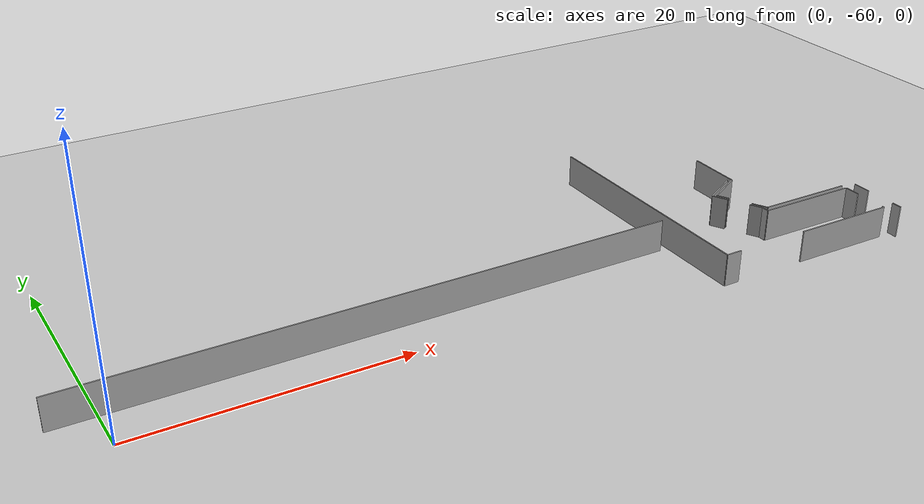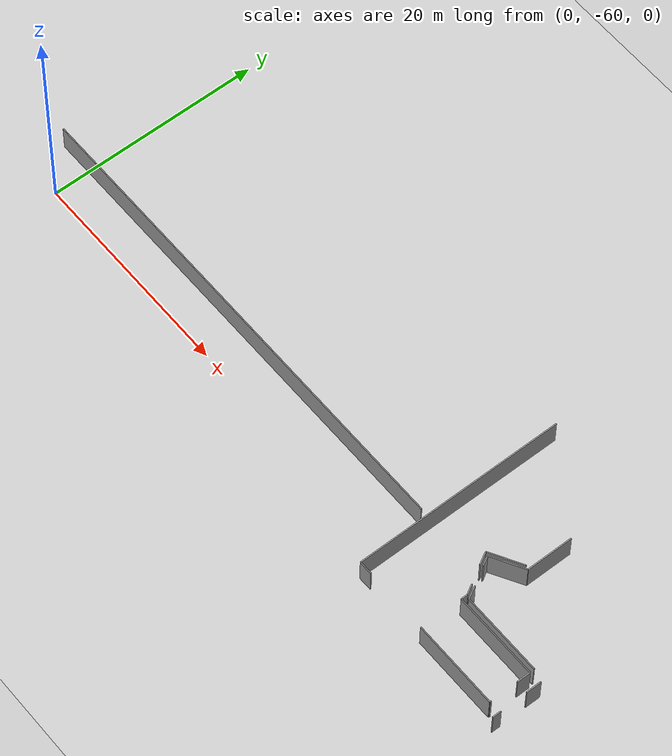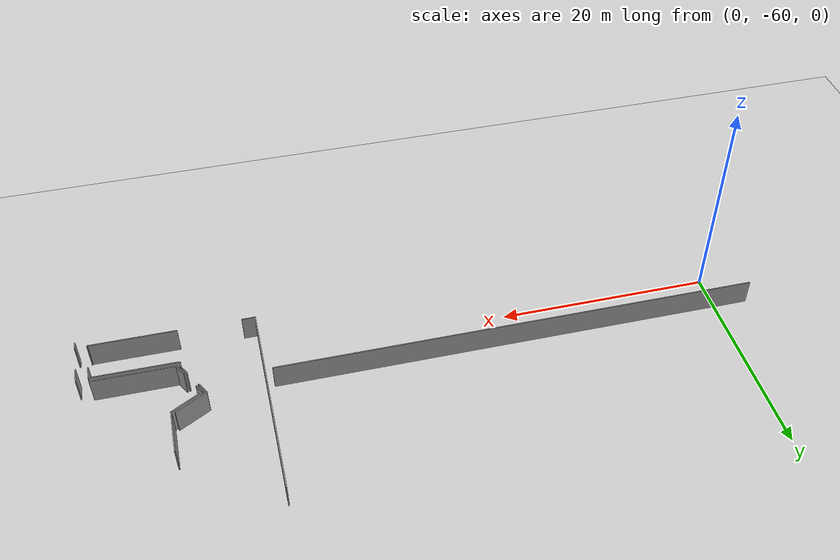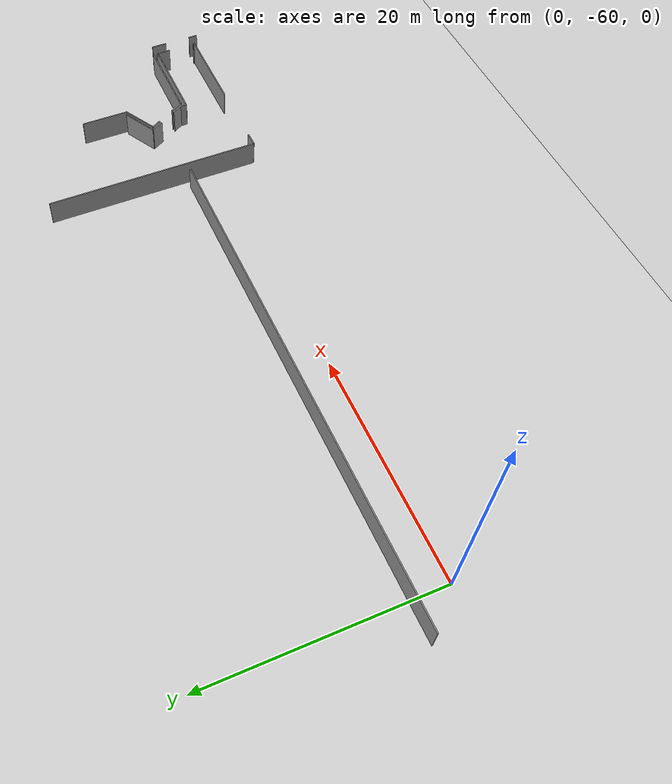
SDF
<sdf version="1.6">
 <world name="default">
  <model name="ground_plane">
   <static>1</static>
   <link name="link">
    <collision name="collision">
     <geometry><plane><normal>0 0 1</normal><size>100 100</size></plane></geometry>
     <surface><friction><ode><mu>100</mu><mu2>50</mu2></ode></friction></surface>
    </collision>
    <visual name="visual">
     <cast_shadows>0</cast_shadows>
     <geometry><plane><normal>0 0 1</normal><size>100 100</size></plane></geometry>
     <material>
      <script><uri>file://media/materials/scripts/gazebo.material</uri><name>Gazebo/Grey</name></script>
     </material>
    </visual>
   </link>
  </model>
  <model name="0510035517_A_40_1_105">
   <static>1</static>
   <link name="Wall_626">
    <collision name="Wall_626_Collision">
     <geometry><box><size>45.6844857498 0.1 2.5</size></box></geometry>
     <pose>22.8422428749 0 1.25 0 0 0</pose>
    </collision>
    <visual name="Wall_626_Visual">
     <pose>22.8422428749 0 1.25 0 0 0</pose>
     <geometry><box><size>45.6844857498 0.1 2.5</size></box></geometry>
     <material>
      <script><uri>file://media/materials/scripts/gazebo.material</uri><name>Gazebo/Grey</name></script>
      <ambient>1 1 1 1</ambient>
     </material>
    </visual>
    <pose>137.002344599 -120.377169072 0 0 0 -3.14096399927</pose>
   </link>
   <link name="Wall_627">
    <collision name="Wall_627_Collision">
     <geometry><box><size>19.5769555797 0.1 2.5</size></box></geometry>
     <pose>9.78847778985 0 1.25 0 0 0</pose>
    </collision>
    <visual name="Wall_627_Visual">
     <pose>9.78847778985 0 1.25 0 0 0</pose>
     <geometry><box><size>19.5769555797 0.1 2.5</size></box></geometry>
     <material>
      <script><uri>file://media/materials/scripts/gazebo.material</uri><name>Gazebo/Grey</name></script>
      <ambient>1 1 1 1</ambient>
     </material>
    </visual>
    <pose>137.69034775 -126.947128978 0 0 0 1.57079632679</pose>
   </link>
   <link name="Wall_632">
    <collision name="Wall_632_Collision">
     <geometry><box><size>3.27915813742 0.1 2.5</size></box></geometry>
     <pose>1.63957906871 0 1.25 0 0 0</pose>
    </collision>
    <visual name="Wall_632_Visual">
     <pose>1.63957906871 0 1.25 0 0 0</pose>
     <geometry><box><size>3.27915813742 0.1 2.5</size></box></geometry>
     <material>
      <script><uri>file://media/materials/scripts/gazebo.material</uri><name>Gazebo/Grey</name></script>
      <ambient>1 1 1 1</ambient>
     </material>
    </visual>
    <pose>145.770508886 -117.332367537 0 0 0 -2.62273494541</pose>
   </link>
   <link name="Wall_633">
    <collision name="Wall_633_Collision">
     <geometry><box><size>1.22577924702 0.1 2.5</size></box></geometry>
     <pose>0.612889623511 0 1.25 0 0 0</pose>
    </collision>
    <visual name="Wall_633_Visual">
     <pose>0.612889623511 0 1.25 0 0 0</pose>
     <geometry><box><size>1.22577924702 0.1 2.5</size></box></geometry>
     <material>
      <script><uri>file://media/materials/scripts/gazebo.material</uri><name>Gazebo/Grey</name></script>
      <ambient>1 1 1 1</ambient>
     </material>
    </visual>
    <pose>142.922933227 -118.958464383 0 0 0 -1.06327490429</pose>
   </link>
   <link name="Wall_634">
    <collision name="Wall_634_Collision">
     <geometry><box><size>1.00200835243 0.1 2.5</size></box></geometry>
     <pose>0.501004176213 0 1.25 0 0 0</pose>
    </collision>
    <visual name="Wall_634_Visual">
     <pose>0.501004176213 0 1.25 0 0 0</pose>
     <geometry><box><size>1.00200835243 0.1 2.5</size></box></geometry>
     <material>
      <script><uri>file://media/materials/scripts/gazebo.material</uri><name>Gazebo/Grey</name></script>
      <ambient>1 1 1 1</ambient>
     </material>
    </visual>
    <pose>144.396281682 -121.558745227 0 0 0 -1.05574016929</pose>
   </link>
   <link name="Wall_635">
    <collision name="Wall_635_Collision">
     <geometry><box><size>0.589390213683 0.1 2.5</size></box></geometry>
     <pose>0.294695106841 0 1.25 0 0 0</pose>
    </collision>
    <visual name="Wall_635_Visual">
     <pose>0.294695106841 0 1.25 0 0 0</pose>
     <geometry><box><size>0.589390213683 0.1 2.5</size></box></geometry>
     <material>
      <script><uri>file://media/materials/scripts/gazebo.material</uri><name>Gazebo/Grey</name></script>
      <ambient>1 1 1 1</ambient>
     </material>
    </visual>
    <pose>144.889854686 -122.430758087 0 0 0 -1.57079632679</pose>
   </link>
   <link name="Wall_636">
    <collision name="Wall_636_Collision">
     <geometry><box><size>7.96045316203 0.1 2.5</size></box></geometry>
     <pose>3.98022658102 0 1.25 0 0 0</pose>
    </collision>
    <visual name="Wall_636_Visual">
     <pose>3.98022658102 0 1.25 0 0 0</pose>
     <geometry><box><size>7.96045316203 0.1 2.5</size></box></geometry>
     <material>
      <script><uri>file://media/materials/scripts/gazebo.material</uri><name>Gazebo/Grey</name></script>
      <ambient>1 1 1 1</ambient>
     </material>
    </visual>
    <pose>144.889854686 -123.020148301 0 0 0 0.0</pose>
   </link>
   <link name="Wall_637">
    <collision name="Wall_637_Collision">
     <geometry><box><size>1.24231969145 0.1 2.5</size></box></geometry>
     <pose>0.621159845727 0 1.25 0 0 0</pose>
    </collision>
    <visual name="Wall_637_Visual">
     <pose>0.621159845727 0 1.25 0 0 0</pose>
     <geometry><box><size>1.24231969145 0.1 2.5</size></box></geometry>
     <material>
      <script><uri>file://media/materials/scripts/gazebo.material</uri><name>Gazebo/Grey</name></script>
      <ambient>1 1 1 1</ambient>
     </material>
    </visual>
    <pose>152.850307848 -123.020148301 0 0 0 -1.57079632679</pose>
   </link>
   <link name="Wall_638">
    <collision name="Wall_638_Collision">
     <geometry><box><size>0.141311323332 0.1 2.5</size></box></geometry>
     <pose>0.0706556616661 0 1.25 0 0 0</pose>
    </collision>
    <visual name="Wall_638_Visual">
     <pose>0.0706556616661 0 1.25 0 0 0</pose>
     <geometry><box><size>0.141311323332 0.1 2.5</size></box></geometry>
     <material>
      <script><uri>file://media/materials/scripts/gazebo.material</uri><name>Gazebo/Grey</name></script>
      <ambient>1 1 1 1</ambient>
     </material>
    </visual>
    <pose>152.850307848 -126.794380587 0 0 0 -1.57079632679</pose>
   </link>
   <link name="Wall_639">
    <collision name="Wall_639_Collision">
     <geometry><box><size>8.03212545192 0.1 2.5</size></box></geometry>
     <pose>4.01606272596 0 1.25 0 0 0</pose>
    </collision>
    <visual name="Wall_639_Visual">
     <pose>4.01606272596 0 1.25 0 0 0</pose>
     <geometry><box><size>8.03212545192 0.1 2.5</size></box></geometry>
     <material>
      <script><uri>file://media/materials/scripts/gazebo.material</uri><name>Gazebo/Grey</name></script>
      <ambient>1 1 1 1</ambient>
     </material>
    </visual>
    <pose>152.850307848 -126.935691911 0 0 0 3.14159265359</pose>
   </link>
   <link name="Wall_640">
    <collision name="Wall_640_Collision">
     <geometry><box><size>1.25177575201 0.1 2.5</size></box></geometry>
     <pose>0.625887876005 0 1.25 0 0 0</pose>
    </collision>
    <visual name="Wall_640_Visual">
     <pose>0.625887876005 0 1.25 0 0 0</pose>
     <geometry><box><size>1.25177575201 0.1 2.5</size></box></geometry>
     <material>
      <script><uri>file://media/materials/scripts/gazebo.material</uri><name>Gazebo/Grey</name></script>
      <ambient>1 1 1 1</ambient>
     </material>
    </visual>
    <pose>138.942071253 -126.935691911 0 0 0 -3.13245585201</pose>
   </link>
   <link name="Wall_641">
    <collision name="Wall_641_Collision">
     <geometry><box><size>3.26708441823 0.1 2.5</size></box></geometry>
     <pose>1.63354220912 0 1.25 0 0 0</pose>
    </collision>
    <visual name="Wall_641_Visual">
     <pose>1.63354220912 0 1.25 0 0 0</pose>
     <geometry><box><size>3.26708441823 0.1 2.5</size></box></geometry>
     <material>
      <script><uri>file://media/materials/scripts/gazebo.material</uri><name>Gazebo/Grey</name></script>
      <ambient>1 1 1 1</ambient>
     </material>
    </visual>
    <pose>143.281548833 -119.078934828 0 0 0 0.525369799991</pose>
   </link>
   <link name="Wall_642">
    <collision name="Wall_642_Collision">
     <geometry><box><size>4.3125369322 0.1 2.5</size></box></geometry>
     <pose>2.1562684661 0 1.25 0 0 0</pose>
    </collision>
    <visual name="Wall_642_Visual">
     <pose>2.1562684661 0 1.25 0 0 0</pose>
     <geometry><box><size>4.3125369322 0.1 2.5</size></box></geometry>
     <material>
      <script><uri>file://media/materials/scripts/gazebo.material</uri><name>Gazebo/Grey</name></script>
      <ambient>1 1 1 1</ambient>
     </material>
    </visual>
    <pose>146.108029457 -117.440384285 0 0 0 1.57079632679</pose>
   </link>
   <link name="Wall_645">
    <collision name="Wall_645_Collision">
     <geometry><box><size>7.56549309646 0.1 2.5</size></box></geometry>
     <pose>3.78274654823 0 1.25 0 0 0</pose>
    </collision>
    <visual name="Wall_645_Visual">
     <pose>3.78274654823 0 1.25 0 0 0</pose>
     <geometry><box><size>7.56549309646 0.1 2.5</size></box></geometry>
     <material>
      <script><uri>file://media/materials/scripts/gazebo.material</uri><name>Gazebo/Grey</name></script>
      <ambient>1 1 1 1</ambient>
     </material>
    </visual>
    <pose>152.823113043 -122.58071075 0 0 0 3.14159265359</pose>
   </link>
   <link name="Wall_646">
    <collision name="Wall_646_Collision">
     <geometry><box><size>1.24850320254 0.1 2.5</size></box></geometry>
     <pose>0.62425160127 0 1.25 0 0 0</pose>
    </collision>
    <visual name="Wall_646_Visual">
     <pose>0.62425160127 0 1.25 0 0 0</pose>
     <geometry><box><size>1.24850320254 0.1 2.5</size></box></geometry>
     <material>
      <script><uri>file://media/materials/scripts/gazebo.material</uri><name>Gazebo/Grey</name></script>
      <ambient>1 1 1 1</ambient>
     </material>
    </visual>
    <pose>145.257619946 -122.58071075 0 0 0 2.0733273889</pose>
   </link>
   <link name="Wall_647">
    <collision name="Wall_647_Collision">
     <geometry><box><size>0.934538814001 0.1 2.5</size></box></geometry>
     <pose>0.467269407 0 1.25 0 0 0</pose>
    </collision>
    <visual name="Wall_647_Visual">
     <pose>0.467269407 0 1.25 0 0 0</pose>
     <geometry><box><size>0.934538814001 0.1 2.5</size></box></geometry>
     <material>
      <script><uri>file://media/materials/scripts/gazebo.material</uri><name>Gazebo/Grey</name></script>
      <ambient>1 1 1 1</ambient>
     </material>
    </visual>
    <pose>143.744114676 -119.890966623 0 0 0 2.08859314181</pose>
   </link>
   <link name="Wall_653">
    <collision name="Wall_653_Collision">
     <geometry><box><size>0.81050685271 0.1 2.5</size></box></geometry>
     <pose>0.405253426355 0 1.25 0 0 0</pose>
    </collision>
    <visual name="Wall_653_Visual">
     <pose>0.405253426355 0 1.25 0 0 0</pose>
     <geometry><box><size>0.81050685271 0.1 2.5</size></box></geometry>
     <material>
      <script><uri>file://media/materials/scripts/gazebo.material</uri><name>Gazebo/Grey</name></script>
      <ambient>1 1 1 1</ambient>
     </material>
    </visual>
    <pose>153.941149934 -127.583538247 0 0 0 1.57079632679</pose>
   </link>
   <link name="Wall_654">
    <collision name="Wall_654_Collision">
     <geometry><box><size>1.42353367263 0.1 2.5</size></box></geometry>
     <pose>0.711766836316 0 1.25 0 0 0</pose>
    </collision>
    <visual name="Wall_654_Visual">
     <pose>0.711766836316 0 1.25 0 0 0</pose>
     <geometry><box><size>1.42353367263 0.1 2.5</size></box></geometry>
     <material>
      <script><uri>file://media/materials/scripts/gazebo.material</uri><name>Gazebo/Grey</name></script>
      <ambient>1 1 1 1</ambient>
     </material>
    </visual>
    <pose>153.941149934 -124.290933582 0 0 0 1.57079632679</pose>
   </link>
   <pose>-94.6 63.7835382475 0 0 0 0</pose>
  </model>
 </world>
</sdf>
